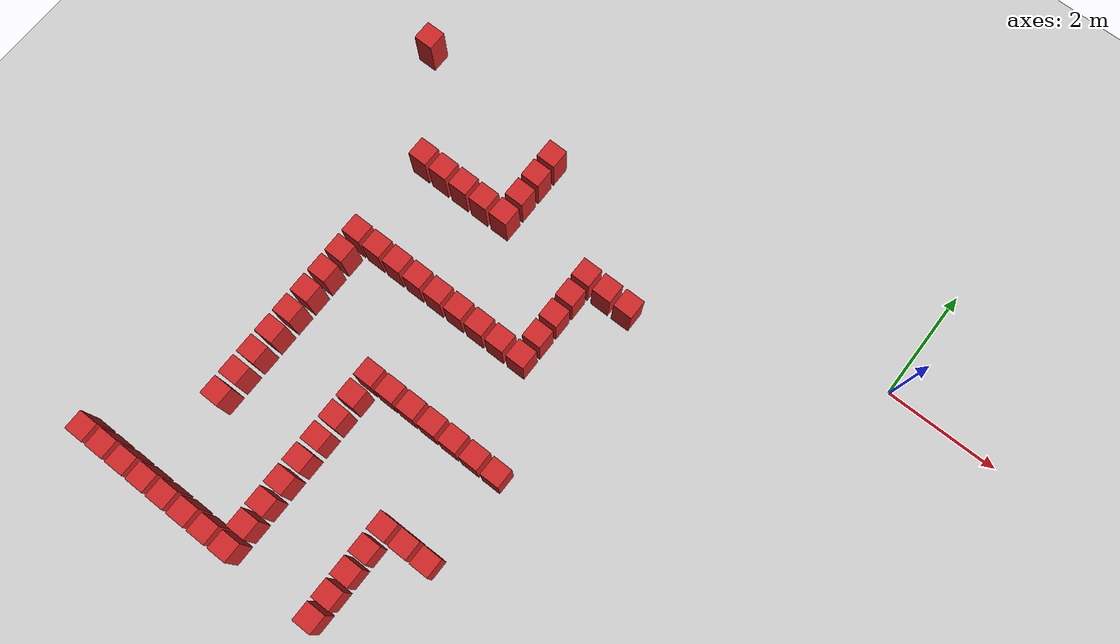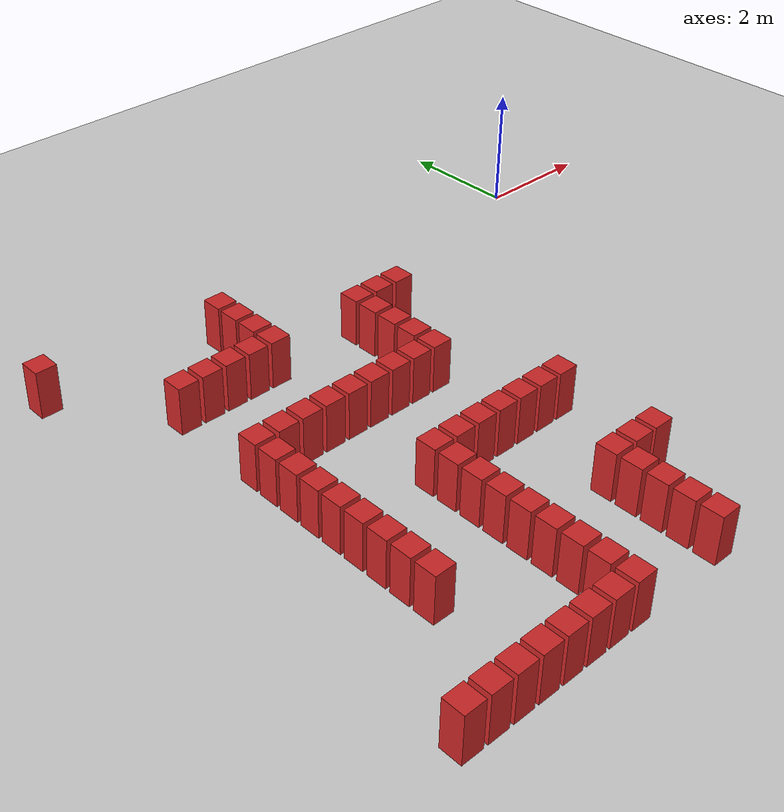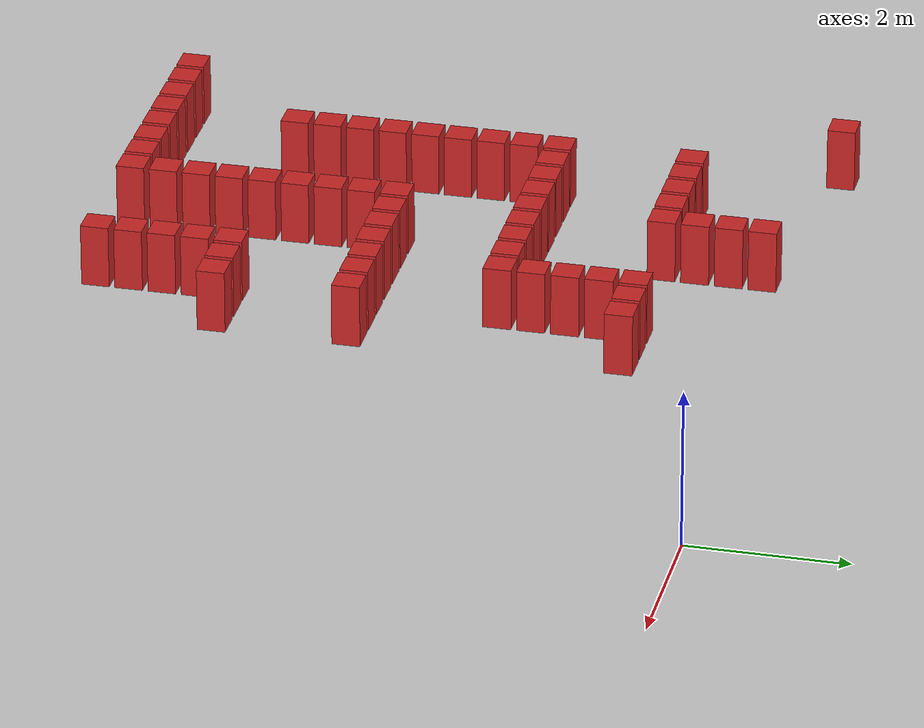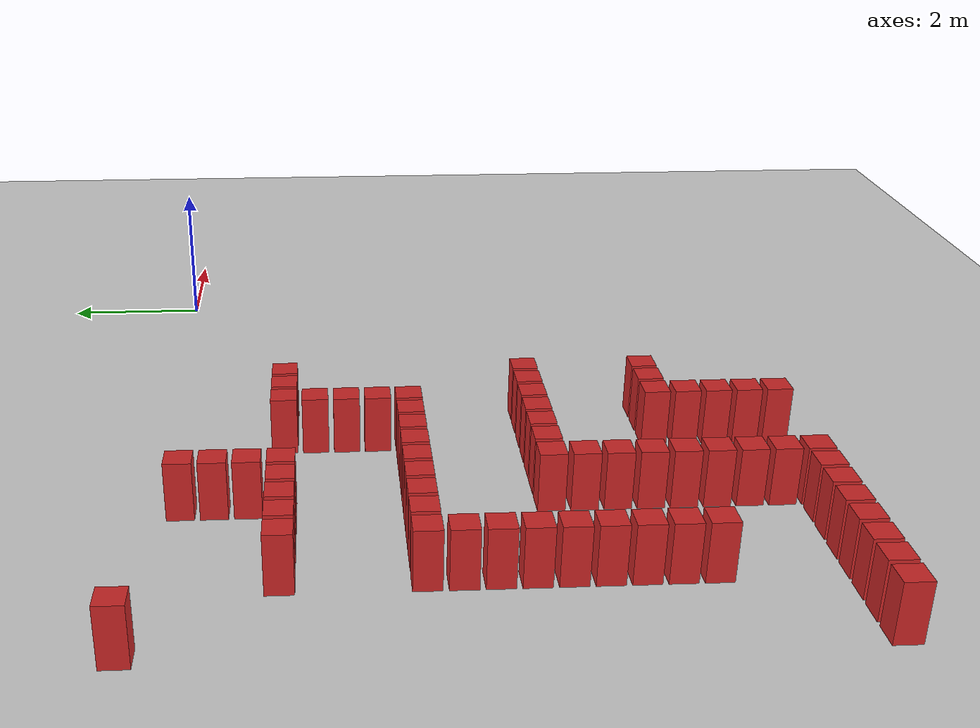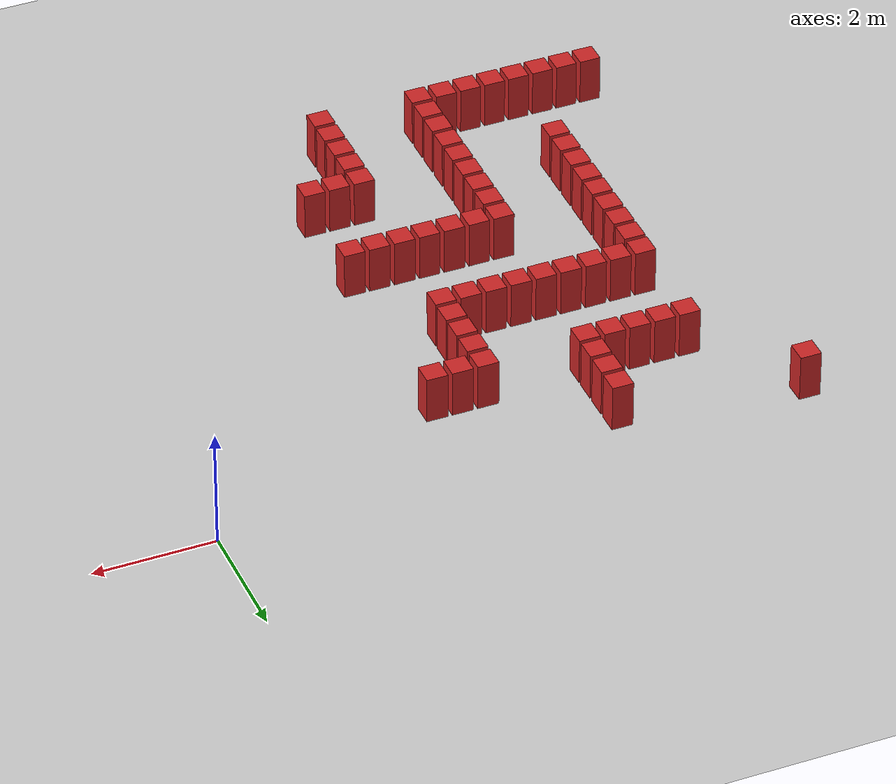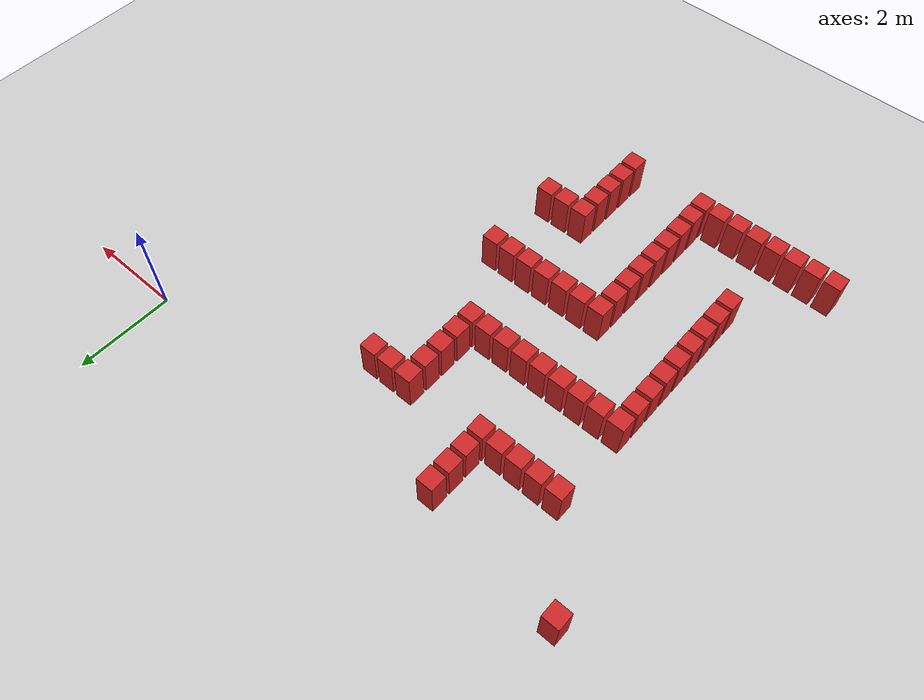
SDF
<sdf version="1.6">
 <world name="default">
  <model name="ground_plane">
   <static>1</static>
   <link name="link">
    <collision name="collision">
     <geometry><plane><normal>0 0 1</normal><size>100 100</size></plane></geometry>
     <surface><friction><ode><mu>100</mu><mu2>50</mu2></ode></friction></surface>
    </collision>
    <visual name="visual">
     <cast_shadows>0</cast_shadows>
     <geometry><plane><normal>0 0 1</normal><size>100 100</size></plane></geometry>
     <material>
      <script><uri>file://media/materials/scripts/gazebo.material</uri><name>Gazebo/Grey</name></script>
     </material>
    </visual>
   </link>
  </model>
  <model name="box_obstacle0">
   <static>0</static>
   <link name="link">
    <pose>0 0 0.1 0 -0 0</pose>
    <inertial>
     <mass>100</mass>
     <inertia>
      <ixx>0.166667</ixx>
      <ixy>0</ixy>
      <ixz>0</ixz>
      <iyy>0.166667</iyy>
      <iyz>0</iyz>
      <izz>0.166667</izz>
     </inertia>
    </inertial>
    <collision name="collision"><geometry><box><size>0.35 0.35 0.8</size></box></geometry></collision>
    <visual name="visual">
     <geometry><box><size>0.35 0.35 0.8</size></box></geometry>
     <material>
      <script><name>Gazebo/Red</name><uri>file://media/materials/scripts/gazebo.material</uri></script>
     </material>
    </visual>
   </link>
   <pose>-9.58034 -8.31994 0.300001 -1e-06 1.7e-05 0.000735</pose>
  </model>
  <model name="box_obstacle1">
   <static>0</static>
   <link name="link">
    <pose>0 0 0.1 0 -0 0</pose>
    <inertial>
     <mass>100</mass>
     <inertia>
      <ixx>0.166667</ixx>
      <ixy>0</ixy>
      <ixz>0</ixz>
      <iyy>0.166667</iyy>
      <iyz>0</iyz>
      <izz>0.166667</izz>
     </inertia>
    </inertial>
    <collision name="collision"><geometry><box><size>0.35 0.35 0.8</size></box></geometry></collision>
    <visual name="visual">
     <geometry><box><size>0.35 0.35 0.8</size></box></geometry>
     <material>
      <script><name>Gazebo/Red</name><uri>file://media/materials/scripts/gazebo.material</uri></script>
     </material>
    </visual>
   </link>
   <pose>-9.58034 0.080061 0.300001 -1e-06 1.7e-05 0.000735</pose>
  </model>
  <model name="box_obstacle2">
   <static>0</static>
   <link name="link">
    <pose>0 0 0.1 0 -0 0</pose>
    <inertial>
     <mass>100</mass>
     <inertia>
      <ixx>0.166667</ixx>
      <ixy>0</ixy>
      <ixz>0</ixz>
      <iyy>0.166667</iyy>
      <iyz>0</iyz>
      <izz>0.166667</izz>
     </inertia>
    </inertial>
    <collision name="collision"><geometry><box><size>0.35 0.35 0.8</size></box></geometry></collision>
    <visual name="visual">
     <geometry><box><size>0.35 0.35 0.8</size></box></geometry>
     <material>
      <script><name>Gazebo/Red</name><uri>file://media/materials/scripts/gazebo.material</uri></script>
     </material>
    </visual>
   </link>
   <pose>-9.16034 -8.31994 0.300001 -1e-06 1.7e-05 0.000735</pose>
  </model>
  <model name="box_obstacle4">
   <static>0</static>
   <link name="link">
    <pose>0 0 0.1 0 -0 0</pose>
    <inertial>
     <mass>100</mass>
     <inertia>
      <ixx>0.166667</ixx>
      <ixy>0</ixy>
      <ixz>0</ixz>
      <iyy>0.166667</iyy>
      <iyz>0</iyz>
      <izz>0.166667</izz>
     </inertia>
    </inertial>
    <collision name="collision"><geometry><box><size>0.35 0.35 0.8</size></box></geometry></collision>
    <visual name="visual">
     <geometry><box><size>0.35 0.35 0.8</size></box></geometry>
     <material>
      <script><name>Gazebo/Red</name><uri>file://media/materials/scripts/gazebo.material</uri></script>
     </material>
    </visual>
   </link>
   <pose>-8.74034 -8.31994 0.300001 -1e-06 1.7e-05 0.000735</pose>
  </model>
  <model name="box_obstacle6">
   <static>0</static>
   <link name="link">
    <pose>0 0 0.1 0 -0 0</pose>
    <inertial>
     <mass>100</mass>
     <inertia>
      <ixx>0.166667</ixx>
      <ixy>0</ixy>
      <ixz>0</ixz>
      <iyy>0.166667</iyy>
      <iyz>0</iyz>
      <izz>0.166667</izz>
     </inertia>
    </inertial>
    <collision name="collision"><geometry><box><size>0.35 0.35 0.8</size></box></geometry></collision>
    <visual name="visual">
     <geometry><box><size>0.35 0.35 0.8</size></box></geometry>
     <material>
      <script><name>Gazebo/Red</name><uri>file://media/materials/scripts/gazebo.material</uri></script>
     </material>
    </visual>
   </link>
   <pose>-8.32034 -8.31994 0.300001 -1e-06 1.7e-05 0.000735</pose>
  </model>
  <model name="box_obstacle7">
   <static>0</static>
   <link name="link">
    <pose>0 0 0.1 0 -0 0</pose>
    <inertial>
     <mass>100</mass>
     <inertia>
      <ixx>0.166667</ixx>
      <ixy>0</ixy>
      <ixz>0</ixz>
      <iyy>0.166667</iyy>
      <iyz>0</iyz>
      <izz>0.166667</izz>
     </inertia>
    </inertial>
    <collision name="collision"><geometry><box><size>0.35 0.35 0.8</size></box></geometry></collision>
    <visual name="visual">
     <geometry><box><size>0.35 0.35 0.8</size></box></geometry>
     <material>
      <script><name>Gazebo/Red</name><uri>file://media/materials/scripts/gazebo.material</uri></script>
     </material>
    </visual>
   </link>
   <pose>-8.32034 -6.63994 0.300001 -1e-06 1.7e-05 0.000735</pose>
  </model>
  <model name="box_obstacle8">
   <static>0</static>
   <link name="link">
    <pose>0 0 0.1 0 -0 0</pose>
    <inertial>
     <mass>100</mass>
     <inertia>
      <ixx>0.166667</ixx>
      <ixy>0</ixy>
      <ixz>0</ixz>
      <iyy>0.166667</iyy>
      <iyz>0</iyz>
      <izz>0.166667</izz>
     </inertia>
    </inertial>
    <collision name="collision"><geometry><box><size>0.35 0.35 0.8</size></box></geometry></collision>
    <visual name="visual">
     <geometry><box><size>0.35 0.35 0.8</size></box></geometry>
     <material>
      <script><name>Gazebo/Red</name><uri>file://media/materials/scripts/gazebo.material</uri></script>
     </material>
    </visual>
   </link>
   <pose>-8.32034 -6.21994 0.300001 -1e-06 1.7e-05 0.000735</pose>
  </model>
  <model name="box_obstacle9">
   <static>0</static>
   <link name="link">
    <pose>0 0 0.1 0 -0 0</pose>
    <inertial>
     <mass>100</mass>
     <inertia>
      <ixx>0.166667</ixx>
      <ixy>0</ixy>
      <ixz>0</ixz>
      <iyy>0.166667</iyy>
      <iyz>0</iyz>
      <izz>0.166667</izz>
     </inertia>
    </inertial>
    <collision name="collision"><geometry><box><size>0.35 0.35 0.8</size></box></geometry></collision>
    <visual name="visual">
     <geometry><box><size>0.35 0.35 0.8</size></box></geometry>
     <material>
      <script><name>Gazebo/Red</name><uri>file://media/materials/scripts/gazebo.material</uri></script>
     </material>
    </visual>
   </link>
   <pose>-8.32034 -5.79994 0.300001 -1e-06 1.7e-05 0.000735</pose>
  </model>
  <model name="box_obstacle10">
   <static>0</static>
   <link name="link">
    <pose>0 0 0.1 0 -0 0</pose>
    <inertial>
     <mass>100</mass>
     <inertia>
      <ixx>0.166667</ixx>
      <ixy>0</ixy>
      <ixz>0</ixz>
      <iyy>0.166667</iyy>
      <iyz>0</iyz>
      <izz>0.166667</izz>
     </inertia>
    </inertial>
    <collision name="collision"><geometry><box><size>0.35 0.35 0.8</size></box></geometry></collision>
    <visual name="visual">
     <geometry><box><size>0.35 0.35 0.8</size></box></geometry>
     <material>
      <script><name>Gazebo/Red</name><uri>file://media/materials/scripts/gazebo.material</uri></script>
     </material>
    </visual>
   </link>
   <pose>-8.32034 -5.37994 0.300001 -1e-06 1.7e-05 0.000735</pose>
  </model>
  <model name="box_obstacle11">
   <static>0</static>
   <link name="link">
    <pose>0 0 0.1 0 -0 0</pose>
    <inertial>
     <mass>100</mass>
     <inertia>
      <ixx>0.166667</ixx>
      <ixy>0</ixy>
      <ixz>0</ixz>
      <iyy>0.166667</iyy>
      <iyz>0</iyz>
      <izz>0.166667</izz>
     </inertia>
    </inertial>
    <collision name="collision"><geometry><box><size>0.35 0.35 0.8</size></box></geometry></collision>
    <visual name="visual">
     <geometry><box><size>0.35 0.35 0.8</size></box></geometry>
     <material>
      <script><name>Gazebo/Red</name><uri>file://media/materials/scripts/gazebo.material</uri></script>
     </material>
    </visual>
   </link>
   <pose>-8.32034 -4.95994 0.300001 -1e-06 1.7e-05 0.000735</pose>
  </model>
  <model name="box_obstacle12">
   <static>0</static>
   <link name="link">
    <pose>0 0 0.1 0 -0 0</pose>
    <inertial>
     <mass>100</mass>
     <inertia>
      <ixx>0.166667</ixx>
      <ixy>0</ixy>
      <ixz>0</ixz>
      <iyy>0.166667</iyy>
      <iyz>0</iyz>
      <izz>0.166667</izz>
     </inertia>
    </inertial>
    <collision name="collision"><geometry><box><size>0.35 0.35 0.8</size></box></geometry></collision>
    <visual name="visual">
     <geometry><box><size>0.35 0.35 0.8</size></box></geometry>
     <material>
      <script><name>Gazebo/Red</name><uri>file://media/materials/scripts/gazebo.material</uri></script>
     </material>
    </visual>
   </link>
   <pose>-8.32034 -4.53994 0.300001 -1e-06 1.7e-05 0.000735</pose>
  </model>
  <model name="box_obstacle13">
   <static>0</static>
   <link name="link">
    <pose>0 0 0.1 0 -0 0</pose>
    <inertial>
     <mass>100</mass>
     <inertia>
      <ixx>0.166667</ixx>
      <ixy>0</ixy>
      <ixz>0</ixz>
      <iyy>0.166667</iyy>
      <iyz>0</iyz>
      <izz>0.166667</izz>
     </inertia>
    </inertial>
    <collision name="collision"><geometry><box><size>0.35 0.35 0.8</size></box></geometry></collision>
    <visual name="visual">
     <geometry><box><size>0.35 0.35 0.8</size></box></geometry>
     <material>
      <script><name>Gazebo/Red</name><uri>file://media/materials/scripts/gazebo.material</uri></script>
     </material>
    </visual>
   </link>
   <pose>-8.32034 -4.11994 0.300001 -1e-06 1.7e-05 0.000735</pose>
  </model>
  <model name="box_obstacle14">
   <static>0</static>
   <link name="link">
    <pose>0 0 0.1 0 -0 0</pose>
    <inertial>
     <mass>100</mass>
     <inertia>
      <ixx>0.166667</ixx>
      <ixy>0</ixy>
      <ixz>0</ixz>
      <iyy>0.166667</iyy>
      <iyz>0</iyz>
      <izz>0.166667</izz>
     </inertia>
    </inertial>
    <collision name="collision"><geometry><box><size>0.35 0.35 0.8</size></box></geometry></collision>
    <visual name="visual">
     <geometry><box><size>0.35 0.35 0.8</size></box></geometry>
     <material>
      <script><name>Gazebo/Red</name><uri>file://media/materials/scripts/gazebo.material</uri></script>
     </material>
    </visual>
   </link>
   <pose>-8.32034 -3.69994 0.300001 -1e-06 1.7e-05 0.000735</pose>
  </model>
  <model name="box_obstacle15">
   <static>0</static>
   <link name="link">
    <pose>0 0 0.1 0 -0 0</pose>
    <inertial>
     <mass>100</mass>
     <inertia>
      <ixx>0.166667</ixx>
      <ixy>0</ixy>
      <ixz>0</ixz>
      <iyy>0.166667</iyy>
      <iyz>0</iyz>
      <izz>0.166667</izz>
     </inertia>
    </inertial>
    <collision name="collision"><geometry><box><size>0.35 0.35 0.8</size></box></geometry></collision>
    <visual name="visual">
     <geometry><box><size>0.35 0.35 0.8</size></box></geometry>
     <material>
      <script><name>Gazebo/Red</name><uri>file://media/materials/scripts/gazebo.material</uri></script>
     </material>
    </visual>
   </link>
   <pose>-8.32034 -3.27994 0.300001 -1e-06 1.7e-05 0.000735</pose>
  </model>
  <model name="box_obstacle16">
   <static>0</static>
   <link name="link">
    <pose>0 0 0.1 0 -0 0</pose>
    <inertial>
     <mass>100</mass>
     <inertia>
      <ixx>0.166667</ixx>
      <ixy>0</ixy>
      <ixz>0</ixz>
      <iyy>0.166667</iyy>
      <iyz>0</iyz>
      <izz>0.166667</izz>
     </inertia>
    </inertial>
    <collision name="collision"><geometry><box><size>0.35 0.35 0.8</size></box></geometry></collision>
    <visual name="visual">
     <geometry><box><size>0.35 0.35 0.8</size></box></geometry>
     <material>
      <script><name>Gazebo/Red</name><uri>file://media/materials/scripts/gazebo.material</uri></script>
     </material>
    </visual>
   </link>
   <pose>-8.32034 -1.59994 0.300001 -1e-06 1.7e-05 0.000735</pose>
  </model>
  <model name="box_obstacle35">
   <static>0</static>
   <link name="link">
    <pose>0 0 0.1 0 -0 0</pose>
    <inertial>
     <mass>100</mass>
     <inertia>
      <ixx>0.166667</ixx>
      <ixy>0</ixy>
      <ixz>0</ixz>
      <iyy>0.166667</iyy>
      <iyz>0</iyz>
      <izz>0.166667</izz>
     </inertia>
    </inertial>
    <collision name="collision"><geometry><box><size>0.35 0.35 0.8</size></box></geometry></collision>
    <visual name="visual">
     <geometry><box><size>0.35 0.35 0.8</size></box></geometry>
     <material>
      <script><name>Gazebo/Red</name><uri>file://media/materials/scripts/gazebo.material</uri></script>
     </material>
    </visual>
   </link>
   <pose>-7.90034 -8.31994 0.300001 -1e-06 1.7e-05 0.000735</pose>
  </model>
  <model name="box_obstacle36">
   <static>0</static>
   <link name="link">
    <pose>0 0 0.1 0 -0 0</pose>
    <inertial>
     <mass>100</mass>
     <inertia>
      <ixx>0.166667</ixx>
      <ixy>0</ixy>
      <ixz>0</ixz>
      <iyy>0.166667</iyy>
      <iyz>0</iyz>
      <izz>0.166667</izz>
     </inertia>
    </inertial>
    <collision name="collision"><geometry><box><size>0.35 0.35 0.8</size></box></geometry></collision>
    <visual name="visual">
     <geometry><box><size>0.35 0.35 0.8</size></box></geometry>
     <material>
      <script><name>Gazebo/Red</name><uri>file://media/materials/scripts/gazebo.material</uri></script>
     </material>
    </visual>
   </link>
   <pose>-7.90034 -3.27994 0.300001 -1e-06 1.7e-05 0.000735</pose>
  </model>
  <model name="box_obstacle37">
   <static>0</static>
   <link name="link">
    <pose>0 0 0.1 0 -0 0</pose>
    <inertial>
     <mass>100</mass>
     <inertia>
      <ixx>0.166667</ixx>
      <ixy>0</ixy>
      <ixz>0</ixz>
      <iyy>0.166667</iyy>
      <iyz>0</iyz>
      <izz>0.166667</izz>
     </inertia>
    </inertial>
    <collision name="collision"><geometry><box><size>0.35 0.35 0.8</size></box></geometry></collision>
    <visual name="visual">
     <geometry><box><size>0.35 0.35 0.8</size></box></geometry>
     <material>
      <script><name>Gazebo/Red</name><uri>file://media/materials/scripts/gazebo.material</uri></script>
     </material>
    </visual>
   </link>
   <pose>-7.90034 -1.59994 0.300001 -1e-06 1.7e-05 0.000735</pose>
  </model>
  <model name="box_obstacle40">
   <static>0</static>
   <link name="link">
    <pose>0 0 0.1 0 -0 0</pose>
    <inertial>
     <mass>100</mass>
     <inertia>
      <ixx>0.166667</ixx>
      <ixy>0</ixy>
      <ixz>0</ixz>
      <iyy>0.166667</iyy>
      <iyz>0</iyz>
      <izz>0.166667</izz>
     </inertia>
    </inertial>
    <collision name="collision"><geometry><box><size>0.35 0.35 0.8</size></box></geometry></collision>
    <visual name="visual">
     <geometry><box><size>0.35 0.35 0.8</size></box></geometry>
     <material>
      <script><name>Gazebo/Red</name><uri>file://media/materials/scripts/gazebo.material</uri></script>
     </material>
    </visual>
   </link>
   <pose>-7.48034 -8.31994 0.300001 -1e-06 1.7e-05 0.000735</pose>
  </model>
  <model name="box_obstacle41">
   <static>0</static>
   <link name="link">
    <pose>0 0 0.1 0 -0 0</pose>
    <inertial>
     <mass>100</mass>
     <inertia>
      <ixx>0.166667</ixx>
      <ixy>0</ixy>
      <ixz>0</ixz>
      <iyy>0.166667</iyy>
      <iyz>0</iyz>
      <izz>0.166667</izz>
     </inertia>
    </inertial>
    <collision name="collision"><geometry><box><size>0.35 0.35 0.8</size></box></geometry></collision>
    <visual name="visual">
     <geometry><box><size>0.35 0.35 0.8</size></box></geometry>
     <material>
      <script><name>Gazebo/Red</name><uri>file://media/materials/scripts/gazebo.material</uri></script>
     </material>
    </visual>
   </link>
   <pose>-7.48034 -3.27994 0.300001 -1e-06 1.7e-05 0.000735</pose>
  </model>
  <model name="box_obstacle42">
   <static>0</static>
   <link name="link">
    <pose>0 0 0.1 0 -0 0</pose>
    <inertial>
     <mass>100</mass>
     <inertia>
      <ixx>0.166667</ixx>
      <ixy>0</ixy>
      <ixz>0</ixz>
      <iyy>0.166667</iyy>
      <iyz>0</iyz>
      <izz>0.166667</izz>
     </inertia>
    </inertial>
    <collision name="collision"><geometry><box><size>0.35 0.35 0.8</size></box></geometry></collision>
    <visual name="visual">
     <geometry><box><size>0.35 0.35 0.8</size></box></geometry>
     <material>
      <script><name>Gazebo/Red</name><uri>file://media/materials/scripts/gazebo.material</uri></script>
     </material>
    </visual>
   </link>
   <pose>-7.48034 -1.59994 0.300001 -1e-06 1.7e-05 0.000735</pose>
  </model>
  <model name="box_obstacle45">
   <static>0</static>
   <link name="link">
    <pose>0 0 0.1 0 -0 0</pose>
    <inertial>
     <mass>100</mass>
     <inertia>
      <ixx>0.166667</ixx>
      <ixy>0</ixy>
      <ixz>0</ixz>
      <iyy>0.166667</iyy>
      <iyz>0</iyz>
      <izz>0.166667</izz>
     </inertia>
    </inertial>
    <collision name="collision"><geometry><box><size>0.35 0.35 0.8</size></box></geometry></collision>
    <visual name="visual">
     <geometry><box><size>0.35 0.35 0.8</size></box></geometry>
     <material>
      <script><name>Gazebo/Red</name><uri>file://media/materials/scripts/gazebo.material</uri></script>
     </material>
    </visual>
   </link>
   <pose>-7.06034 -8.31994 0.300001 -1e-06 1.7e-05 0.000735</pose>
  </model>
  <model name="box_obstacle46">
   <static>0</static>
   <link name="link">
    <pose>0 0 0.1 0 -0 0</pose>
    <inertial>
     <mass>100</mass>
     <inertia>
      <ixx>0.166667</ixx>
      <ixy>0</ixy>
      <ixz>0</ixz>
      <iyy>0.166667</iyy>
      <iyz>0</iyz>
      <izz>0.166667</izz>
     </inertia>
    </inertial>
    <collision name="collision"><geometry><box><size>0.35 0.35 0.8</size></box></geometry></collision>
    <visual name="visual">
     <geometry><box><size>0.35 0.35 0.8</size></box></geometry>
     <material>
      <script><name>Gazebo/Red</name><uri>file://media/materials/scripts/gazebo.material</uri></script>
     </material>
    </visual>
   </link>
   <pose>-7.06034 -3.27994 0.300001 -1e-06 1.7e-05 0.000735</pose>
  </model>
  <model name="box_obstacle47">
   <static>0</static>
   <link name="link">
    <pose>0 0 0.1 0 -0 0</pose>
    <inertial>
     <mass>100</mass>
     <inertia>
      <ixx>0.166667</ixx>
      <ixy>0</ixy>
      <ixz>0</ixz>
      <iyy>0.166667</iyy>
      <iyz>0</iyz>
      <izz>0.166667</izz>
     </inertia>
    </inertial>
    <collision name="collision"><geometry><box><size>0.35 0.35 0.8</size></box></geometry></collision>
    <visual name="visual">
     <geometry><box><size>0.35 0.35 0.8</size></box></geometry>
     <material>
      <script><name>Gazebo/Red</name><uri>file://media/materials/scripts/gazebo.material</uri></script>
     </material>
    </visual>
   </link>
   <pose>-7.06034 -1.59994 0.300001 -1e-06 1.7e-05 0.000735</pose>
  </model>
  <model name="box_obstacle50">
   <static>0</static>
   <link name="link">
    <pose>0 0 0.1 0 -0 0</pose>
    <inertial>
     <mass>100</mass>
     <inertia>
      <ixx>0.166667</ixx>
      <ixy>0</ixy>
      <ixz>0</ixz>
      <iyy>0.166667</iyy>
      <iyz>0</iyz>
      <izz>0.166667</izz>
     </inertia>
    </inertial>
    <collision name="collision"><geometry><box><size>0.35 0.35 0.8</size></box></geometry></collision>
    <visual name="visual">
     <geometry><box><size>0.35 0.35 0.8</size></box></geometry>
     <material>
      <script><name>Gazebo/Red</name><uri>file://media/materials/scripts/gazebo.material</uri></script>
     </material>
    </visual>
   </link>
   <pose>-6.64034 -8.31994 0.300001 -1e-06 1.7e-05 0.000735</pose>
  </model>
  <model name="box_obstacle51">
   <static>0</static>
   <link name="link">
    <pose>0 0 0.1 0 -0 0</pose>
    <inertial>
     <mass>100</mass>
     <inertia>
      <ixx>0.166667</ixx>
      <ixy>0</ixy>
      <ixz>0</ixz>
      <iyy>0.166667</iyy>
      <iyz>0</iyz>
      <izz>0.166667</izz>
     </inertia>
    </inertial>
    <collision name="collision"><geometry><box><size>0.35 0.35 0.8</size></box></geometry></collision>
    <visual name="visual">
     <geometry><box><size>0.35 0.35 0.8</size></box></geometry>
     <material>
      <script><name>Gazebo/Red</name><uri>file://media/materials/scripts/gazebo.material</uri></script>
     </material>
    </visual>
   </link>
   <pose>-6.64034 -7.89994 0.300001 -1e-06 1.7e-05 0.000735</pose>
  </model>
  <model name="box_obstacle52">
   <static>0</static>
   <link name="link">
    <pose>0 0 0.1 0 -0 0</pose>
    <inertial>
     <mass>100</mass>
     <inertia>
      <ixx>0.166667</ixx>
      <ixy>0</ixy>
      <ixz>0</ixz>
      <iyy>0.166667</iyy>
      <iyz>0</iyz>
      <izz>0.166667</izz>
     </inertia>
    </inertial>
    <collision name="collision"><geometry><box><size>0.35 0.35 0.8</size></box></geometry></collision>
    <visual name="visual">
     <geometry><box><size>0.35 0.35 0.8</size></box></geometry>
     <material>
      <script><name>Gazebo/Red</name><uri>file://media/materials/scripts/gazebo.material</uri></script>
     </material>
    </visual>
   </link>
   <pose>-6.64034 -7.47994 0.300001 -1e-06 1.7e-05 0.000735</pose>
  </model>
  <model name="box_obstacle53">
   <static>0</static>
   <link name="link">
    <pose>0 0 0.1 0 -0 0</pose>
    <inertial>
     <mass>100</mass>
     <inertia>
      <ixx>0.166667</ixx>
      <ixy>0</ixy>
      <ixz>0</ixz>
      <iyy>0.166667</iyy>
      <iyz>0</iyz>
      <izz>0.166667</izz>
     </inertia>
    </inertial>
    <collision name="collision"><geometry><box><size>0.35 0.35 0.8</size></box></geometry></collision>
    <visual name="visual">
     <geometry><box><size>0.35 0.35 0.8</size></box></geometry>
     <material>
      <script><name>Gazebo/Red</name><uri>file://media/materials/scripts/gazebo.material</uri></script>
     </material>
    </visual>
   </link>
   <pose>-6.64034 -7.05994 0.300001 -1e-06 1.7e-05 0.000735</pose>
  </model>
  <model name="box_obstacle54">
   <static>0</static>
   <link name="link">
    <pose>0 0 0.1 0 -0 0</pose>
    <inertial>
     <mass>100</mass>
     <inertia>
      <ixx>0.166667</ixx>
      <ixy>0</ixy>
      <ixz>0</ixz>
      <iyy>0.166667</iyy>
      <iyz>0</iyz>
      <izz>0.166667</izz>
     </inertia>
    </inertial>
    <collision name="collision"><geometry><box><size>0.35 0.35 0.8</size></box></geometry></collision>
    <visual name="visual">
     <geometry><box><size>0.35 0.35 0.8</size></box></geometry>
     <material>
      <script><name>Gazebo/Red</name><uri>file://media/materials/scripts/gazebo.material</uri></script>
     </material>
    </visual>
   </link>
   <pose>-6.64034 -6.63994 0.300001 -1e-06 1.7e-05 0.000735</pose>
  </model>
  <model name="box_obstacle55">
   <static>0</static>
   <link name="link">
    <pose>0 0 0.1 0 -0 0</pose>
    <inertial>
     <mass>100</mass>
     <inertia>
      <ixx>0.166667</ixx>
      <ixy>0</ixy>
      <ixz>0</ixz>
      <iyy>0.166667</iyy>
      <iyz>0</iyz>
      <izz>0.166667</izz>
     </inertia>
    </inertial>
    <collision name="collision"><geometry><box><size>0.35 0.35 0.8</size></box></geometry></collision>
    <visual name="visual">
     <geometry><box><size>0.35 0.35 0.8</size></box></geometry>
     <material>
      <script><name>Gazebo/Red</name><uri>file://media/materials/scripts/gazebo.material</uri></script>
     </material>
    </visual>
   </link>
   <pose>-6.64034 -6.21994 0.300001 -1e-06 1.7e-05 0.000735</pose>
  </model>
  <model name="box_obstacle56">
   <static>0</static>
   <link name="link">
    <pose>0 0 0.1 0 -0 0</pose>
    <inertial>
     <mass>100</mass>
     <inertia>
      <ixx>0.166667</ixx>
      <ixy>0</ixy>
      <ixz>0</ixz>
      <iyy>0.166667</iyy>
      <iyz>0</iyz>
      <izz>0.166667</izz>
     </inertia>
    </inertial>
    <collision name="collision"><geometry><box><size>0.35 0.35 0.8</size></box></geometry></collision>
    <visual name="visual">
     <geometry><box><size>0.35 0.35 0.8</size></box></geometry>
     <material>
      <script><name>Gazebo/Red</name><uri>file://media/materials/scripts/gazebo.material</uri></script>
     </material>
    </visual>
   </link>
   <pose>-6.64034 -5.79994 0.300001 -1e-06 1.7e-05 0.000735</pose>
  </model>
  <model name="box_obstacle57">
   <static>0</static>
   <link name="link">
    <pose>0 0 0.1 0 -0 0</pose>
    <inertial>
     <mass>100</mass>
     <inertia>
      <ixx>0.166667</ixx>
      <ixy>0</ixy>
      <ixz>0</ixz>
      <iyy>0.166667</iyy>
      <iyz>0</iyz>
      <izz>0.166667</izz>
     </inertia>
    </inertial>
    <collision name="collision"><geometry><box><size>0.35 0.35 0.8</size></box></geometry></collision>
    <visual name="visual">
     <geometry><box><size>0.35 0.35 0.8</size></box></geometry>
     <material>
      <script><name>Gazebo/Red</name><uri>file://media/materials/scripts/gazebo.material</uri></script>
     </material>
    </visual>
   </link>
   <pose>-6.64034 -5.37994 0.300001 -1e-06 1.7e-05 0.000735</pose>
  </model>
  <model name="box_obstacle58">
   <static>0</static>
   <link name="link">
    <pose>0 0 0.1 0 -0 0</pose>
    <inertial>
     <mass>100</mass>
     <inertia>
      <ixx>0.166667</ixx>
      <ixy>0</ixy>
      <ixz>0</ixz>
      <iyy>0.166667</iyy>
      <iyz>0</iyz>
      <izz>0.166667</izz>
     </inertia>
    </inertial>
    <collision name="collision"><geometry><box><size>0.35 0.35 0.8</size></box></geometry></collision>
    <visual name="visual">
     <geometry><box><size>0.35 0.35 0.8</size></box></geometry>
     <material>
      <script><name>Gazebo/Red</name><uri>file://media/materials/scripts/gazebo.material</uri></script>
     </material>
    </visual>
   </link>
   <pose>-6.64034 -4.95994 0.300001 -1e-06 1.7e-05 0.000735</pose>
  </model>
  <model name="box_obstacle59">
   <static>0</static>
   <link name="link">
    <pose>0 0 0.1 0 -0 0</pose>
    <inertial>
     <mass>100</mass>
     <inertia>
      <ixx>0.166667</ixx>
      <ixy>0</ixy>
      <ixz>0</ixz>
      <iyy>0.166667</iyy>
      <iyz>0</iyz>
      <izz>0.166667</izz>
     </inertia>
    </inertial>
    <collision name="collision"><geometry><box><size>0.35 0.35 0.8</size></box></geometry></collision>
    <visual name="visual">
     <geometry><box><size>0.35 0.35 0.8</size></box></geometry>
     <material>
      <script><name>Gazebo/Red</name><uri>file://media/materials/scripts/gazebo.material</uri></script>
     </material>
    </visual>
   </link>
   <pose>-6.64034 -3.27994 0.300001 -1e-06 1.7e-05 0.000735</pose>
  </model>
  <model name="box_obstacle60">
   <static>0</static>
   <link name="link">
    <pose>0 0 0.1 0 -0 0</pose>
    <inertial>
     <mass>100</mass>
     <inertia>
      <ixx>0.166667</ixx>
      <ixy>0</ixy>
      <ixz>0</ixz>
      <iyy>0.166667</iyy>
      <iyz>0</iyz>
      <izz>0.166667</izz>
     </inertia>
    </inertial>
    <collision name="collision"><geometry><box><size>0.35 0.35 0.8</size></box></geometry></collision>
    <visual name="visual">
     <geometry><box><size>0.35 0.35 0.8</size></box></geometry>
     <material>
      <script><name>Gazebo/Red</name><uri>file://media/materials/scripts/gazebo.material</uri></script>
     </material>
    </visual>
   </link>
   <pose>-6.64034 -1.59994 0.300001 -1e-06 1.7e-05 0.000735</pose>
  </model>
  <model name="box_obstacle61">
   <static>0</static>
   <link name="link">
    <pose>0 0 0.1 0 -0 0</pose>
    <inertial>
     <mass>100</mass>
     <inertia>
      <ixx>0.166667</ixx>
      <ixy>0</ixy>
      <ixz>0</ixz>
      <iyy>0.166667</iyy>
      <iyz>0</iyz>
      <izz>0.166667</izz>
     </inertia>
    </inertial>
    <collision name="collision"><geometry><box><size>0.35 0.35 0.8</size></box></geometry></collision>
    <visual name="visual">
     <geometry><box><size>0.35 0.35 0.8</size></box></geometry>
     <material>
      <script><name>Gazebo/Red</name><uri>file://media/materials/scripts/gazebo.material</uri></script>
     </material>
    </visual>
   </link>
   <pose>-6.64034 -1.17994 0.300001 -1e-06 1.7e-05 0.000735</pose>
  </model>
  <model name="box_obstacle62">
   <static>0</static>
   <link name="link">
    <pose>0 0 0.1 0 -0 0</pose>
    <inertial>
     <mass>100</mass>
     <inertia>
      <ixx>0.166667</ixx>
      <ixy>0</ixy>
      <ixz>0</ixz>
      <iyy>0.166667</iyy>
      <iyz>0</iyz>
      <izz>0.166667</izz>
     </inertia>
    </inertial>
    <collision name="collision"><geometry><box><size>0.35 0.35 0.8</size></box></geometry></collision>
    <visual name="visual">
     <geometry><box><size>0.35 0.35 0.8</size></box></geometry>
     <material>
      <script><name>Gazebo/Red</name><uri>file://media/materials/scripts/gazebo.material</uri></script>
     </material>
    </visual>
   </link>
   <pose>-6.64034 -0.759939 0.300001 -1e-06 1.7e-05 0.000735</pose>
  </model>
  <model name="box_obstacle63">
   <static>0</static>
   <link name="link">
    <pose>0 0 0.1 0 -0 0</pose>
    <inertial>
     <mass>100</mass>
     <inertia>
      <ixx>0.166667</ixx>
      <ixy>0</ixy>
      <ixz>0</ixz>
      <iyy>0.166667</iyy>
      <iyz>0</iyz>
      <izz>0.166667</izz>
     </inertia>
    </inertial>
    <collision name="collision"><geometry><box><size>0.35 0.35 0.8</size></box></geometry></collision>
    <visual name="visual">
     <geometry><box><size>0.35 0.35 0.8</size></box></geometry>
     <material>
      <script><name>Gazebo/Red</name><uri>file://media/materials/scripts/gazebo.material</uri></script>
     </material>
    </visual>
   </link>
   <pose>-6.64034 -0.339939 0.300001 -1e-06 1.7e-05 0.000735</pose>
  </model>
  <model name="box_obstacle82">
   <static>0</static>
   <link name="link">
    <pose>0 0 0.1 0 -0 0</pose>
    <inertial>
     <mass>100</mass>
     <inertia>
      <ixx>0.166667</ixx>
      <ixy>0</ixy>
      <ixz>0</ixz>
      <iyy>0.166667</iyy>
      <iyz>0</iyz>
      <izz>0.166667</izz>
     </inertia>
    </inertial>
    <collision name="collision"><geometry><box><size>0.35 0.35 0.8</size></box></geometry></collision>
    <visual name="visual">
     <geometry><box><size>0.35 0.35 0.8</size></box></geometry>
     <material>
      <script><name>Gazebo/Red</name><uri>file://media/materials/scripts/gazebo.material</uri></script>
     </material>
    </visual>
   </link>
   <pose>-6.22034 -4.95994 0.300001 -1e-06 1.7e-05 0.000735</pose>
  </model>
  <model name="box_obstacle83">
   <static>0</static>
   <link name="link">
    <pose>0 0 0.1 0 -0 0</pose>
    <inertial>
     <mass>100</mass>
     <inertia>
      <ixx>0.166667</ixx>
      <ixy>0</ixy>
      <ixz>0</ixz>
      <iyy>0.166667</iyy>
      <iyz>0</iyz>
      <izz>0.166667</izz>
     </inertia>
    </inertial>
    <collision name="collision"><geometry><box><size>0.35 0.35 0.8</size></box></geometry></collision>
    <visual name="visual">
     <geometry><box><size>0.35 0.35 0.8</size></box></geometry>
     <material>
      <script><name>Gazebo/Red</name><uri>file://media/materials/scripts/gazebo.material</uri></script>
     </material>
    </visual>
   </link>
   <pose>-6.22034 -3.27994 0.300001 -1e-06 1.7e-05 0.000735</pose>
  </model>
  <model name="box_obstacle85">
   <static>0</static>
   <link name="link">
    <pose>0 0 0.1 0 -0 0</pose>
    <inertial>
     <mass>100</mass>
     <inertia>
      <ixx>0.166667</ixx>
      <ixy>0</ixy>
      <ixz>0</ixz>
      <iyy>0.166667</iyy>
      <iyz>0</iyz>
      <izz>0.166667</izz>
     </inertia>
    </inertial>
    <collision name="collision"><geometry><box><size>0.35 0.35 0.8</size></box></geometry></collision>
    <visual name="visual">
     <geometry><box><size>0.35 0.35 0.8</size></box></geometry>
     <material>
      <script><name>Gazebo/Red</name><uri>file://media/materials/scripts/gazebo.material</uri></script>
     </material>
    </visual>
   </link>
   <pose>-5.80034 -4.95994 0.300001 -1e-06 1.7e-05 0.000735</pose>
  </model>
  <model name="box_obstacle86">
   <static>0</static>
   <link name="link">
    <pose>0 0 0.1 0 -0 0</pose>
    <inertial>
     <mass>100</mass>
     <inertia>
      <ixx>0.166667</ixx>
      <ixy>0</ixy>
      <ixz>0</ixz>
      <iyy>0.166667</iyy>
      <iyz>0</iyz>
      <izz>0.166667</izz>
     </inertia>
    </inertial>
    <collision name="collision"><geometry><box><size>0.35 0.35 0.8</size></box></geometry></collision>
    <visual name="visual">
     <geometry><box><size>0.35 0.35 0.8</size></box></geometry>
     <material>
      <script><name>Gazebo/Red</name><uri>file://media/materials/scripts/gazebo.material</uri></script>
     </material>
    </visual>
   </link>
   <pose>-5.80034 -3.27994 0.300001 -1e-06 1.7e-05 0.000735</pose>
  </model>
  <model name="box_obstacle88">
   <static>0</static>
   <link name="link">
    <pose>0 0 0.1 0 -0 0</pose>
    <inertial>
     <mass>100</mass>
     <inertia>
      <ixx>0.166667</ixx>
      <ixy>0</ixy>
      <ixz>0</ixz>
      <iyy>0.166667</iyy>
      <iyz>0</iyz>
      <izz>0.166667</izz>
     </inertia>
    </inertial>
    <collision name="collision"><geometry><box><size>0.35 0.35 0.8</size></box></geometry></collision>
    <visual name="visual">
     <geometry><box><size>0.35 0.35 0.8</size></box></geometry>
     <material>
      <script><name>Gazebo/Red</name><uri>file://media/materials/scripts/gazebo.material</uri></script>
     </material>
    </visual>
   </link>
   <pose>-5.38034 -4.95994 0.300001 -1e-06 1.7e-05 0.000735</pose>
  </model>
  <model name="box_obstacle89">
   <static>0</static>
   <link name="link">
    <pose>0 0 0.1 0 -0 0</pose>
    <inertial>
     <mass>100</mass>
     <inertia>
      <ixx>0.166667</ixx>
      <ixy>0</ixy>
      <ixz>0</ixz>
      <iyy>0.166667</iyy>
      <iyz>0</iyz>
      <izz>0.166667</izz>
     </inertia>
    </inertial>
    <collision name="collision"><geometry><box><size>0.35 0.35 0.8</size></box></geometry></collision>
    <visual name="visual">
     <geometry><box><size>0.35 0.35 0.8</size></box></geometry>
     <material>
      <script><name>Gazebo/Red</name><uri>file://media/materials/scripts/gazebo.material</uri></script>
     </material>
    </visual>
   </link>
   <pose>-5.38034 -3.27994 0.300001 -1e-06 1.7e-05 0.000735</pose>
  </model>
  <model name="box_obstacle91">
   <static>0</static>
   <link name="link">
    <pose>0 0 0.1 0 -0 0</pose>
    <inertial>
     <mass>100</mass>
     <inertia>
      <ixx>0.166667</ixx>
      <ixy>0</ixy>
      <ixz>0</ixz>
      <iyy>0.166667</iyy>
      <iyz>0</iyz>
      <izz>0.166667</izz>
     </inertia>
    </inertial>
    <collision name="collision"><geometry><box><size>0.35 0.35 0.8</size></box></geometry></collision>
    <visual name="visual">
     <geometry><box><size>0.35 0.35 0.8</size></box></geometry>
     <material>
      <script><name>Gazebo/Red</name><uri>file://media/materials/scripts/gazebo.material</uri></script>
     </material>
    </visual>
   </link>
   <pose>-4.96034 -8.31994 0.300001 -1e-06 1.7e-05 0.000735</pose>
  </model>
  <model name="box_obstacle92">
   <static>0</static>
   <link name="link">
    <pose>0 0 0.1 0 -0 0</pose>
    <inertial>
     <mass>100</mass>
     <inertia>
      <ixx>0.166667</ixx>
      <ixy>0</ixy>
      <ixz>0</ixz>
      <iyy>0.166667</iyy>
      <iyz>0</iyz>
      <izz>0.166667</izz>
     </inertia>
    </inertial>
    <collision name="collision"><geometry><box><size>0.35 0.35 0.8</size></box></geometry></collision>
    <visual name="visual">
     <geometry><box><size>0.35 0.35 0.8</size></box></geometry>
     <material>
      <script><name>Gazebo/Red</name><uri>file://media/materials/scripts/gazebo.material</uri></script>
     </material>
    </visual>
   </link>
   <pose>-4.96034 -7.89994 0.300001 -1e-06 1.7e-05 0.000735</pose>
  </model>
  <model name="box_obstacle93">
   <static>0</static>
   <link name="link">
    <pose>0 0 0.1 0 -0 0</pose>
    <inertial>
     <mass>100</mass>
     <inertia>
      <ixx>0.166667</ixx>
      <ixy>0</ixy>
      <ixz>0</ixz>
      <iyy>0.166667</iyy>
      <iyz>0</iyz>
      <izz>0.166667</izz>
     </inertia>
    </inertial>
    <collision name="collision"><geometry><box><size>0.35 0.35 0.8</size></box></geometry></collision>
    <visual name="visual">
     <geometry><box><size>0.35 0.35 0.8</size></box></geometry>
     <material>
      <script><name>Gazebo/Red</name><uri>file://media/materials/scripts/gazebo.material</uri></script>
     </material>
    </visual>
   </link>
   <pose>-4.96034 -7.47994 0.300001 -1e-06 1.7e-05 0.000735</pose>
  </model>
  <model name="box_obstacle94">
   <static>0</static>
   <link name="link">
    <pose>0 0 0.1 0 -0 0</pose>
    <inertial>
     <mass>100</mass>
     <inertia>
      <ixx>0.166667</ixx>
      <ixy>0</ixy>
      <ixz>0</ixz>
      <iyy>0.166667</iyy>
      <iyz>0</iyz>
      <izz>0.166667</izz>
     </inertia>
    </inertial>
    <collision name="collision"><geometry><box><size>0.35 0.35 0.8</size></box></geometry></collision>
    <visual name="visual">
     <geometry><box><size>0.35 0.35 0.8</size></box></geometry>
     <material>
      <script><name>Gazebo/Red</name><uri>file://media/materials/scripts/gazebo.material</uri></script>
     </material>
    </visual>
   </link>
   <pose>-4.96034 -7.05994 0.300001 -1e-06 1.7e-05 0.000735</pose>
  </model>
  <model name="box_obstacle95">
   <static>0</static>
   <link name="link">
    <pose>0 0 0.1 0 -0 0</pose>
    <inertial>
     <mass>100</mass>
     <inertia>
      <ixx>0.166667</ixx>
      <ixy>0</ixy>
      <ixz>0</ixz>
      <iyy>0.166667</iyy>
      <iyz>0</iyz>
      <izz>0.166667</izz>
     </inertia>
    </inertial>
    <collision name="collision"><geometry><box><size>0.35 0.35 0.8</size></box></geometry></collision>
    <visual name="visual">
     <geometry><box><size>0.35 0.35 0.8</size></box></geometry>
     <material>
      <script><name>Gazebo/Red</name><uri>file://media/materials/scripts/gazebo.material</uri></script>
     </material>
    </visual>
   </link>
   <pose>-4.96034 -6.63994 0.300001 -1e-06 1.7e-05 0.000735</pose>
  </model>
  <model name="box_obstacle96">
   <static>0</static>
   <link name="link">
    <pose>0 0 0.1 0 -0 0</pose>
    <inertial>
     <mass>100</mass>
     <inertia>
      <ixx>0.166667</ixx>
      <ixy>0</ixy>
      <ixz>0</ixz>
      <iyy>0.166667</iyy>
      <iyz>0</iyz>
      <izz>0.166667</izz>
     </inertia>
    </inertial>
    <collision name="collision"><geometry><box><size>0.35 0.35 0.8</size></box></geometry></collision>
    <visual name="visual">
     <geometry><box><size>0.35 0.35 0.8</size></box></geometry>
     <material>
      <script><name>Gazebo/Red</name><uri>file://media/materials/scripts/gazebo.material</uri></script>
     </material>
    </visual>
   </link>
   <pose>-4.96034 -4.95994 0.300001 -1e-06 1.7e-05 0.000735</pose>
  </model>
  <model name="box_obstacle97">
   <static>0</static>
   <link name="link">
    <pose>0 0 0.1 0 -0 0</pose>
    <inertial>
     <mass>100</mass>
     <inertia>
      <ixx>0.166667</ixx>
      <ixy>0</ixy>
      <ixz>0</ixz>
      <iyy>0.166667</iyy>
      <iyz>0</iyz>
      <izz>0.166667</izz>
     </inertia>
    </inertial>
    <collision name="collision"><geometry><box><size>0.35 0.35 0.8</size></box></geometry></collision>
    <visual name="visual">
     <geometry><box><size>0.35 0.35 0.8</size></box></geometry>
     <material>
      <script><name>Gazebo/Red</name><uri>file://media/materials/scripts/gazebo.material</uri></script>
     </material>
    </visual>
   </link>
   <pose>-4.96034 -3.27994 0.300001 -1e-06 1.7e-05 0.000735</pose>
  </model>
  <model name="box_obstacle98">
   <static>0</static>
   <link name="link">
    <pose>0 0 0.1 0 -0 0</pose>
    <inertial>
     <mass>100</mass>
     <inertia>
      <ixx>0.166667</ixx>
      <ixy>0</ixy>
      <ixz>0</ixz>
      <iyy>0.166667</iyy>
      <iyz>0</iyz>
      <izz>0.166667</izz>
     </inertia>
    </inertial>
    <collision name="collision"><geometry><box><size>0.35 0.35 0.8</size></box></geometry></collision>
    <visual name="visual">
     <geometry><box><size>0.35 0.35 0.8</size></box></geometry>
     <material>
      <script><name>Gazebo/Red</name><uri>file://media/materials/scripts/gazebo.material</uri></script>
     </material>
    </visual>
   </link>
   <pose>-4.96034 -2.85994 0.300001 -1e-06 1.7e-05 0.000735</pose>
  </model>
  <model name="box_obstacle99">
   <static>0</static>
   <link name="link">
    <pose>0 0 0.1 0 -0 0</pose>
    <inertial>
     <mass>100</mass>
     <inertia>
      <ixx>0.166667</ixx>
      <ixy>0</ixy>
      <ixz>0</ixz>
      <iyy>0.166667</iyy>
      <iyz>0</iyz>
      <izz>0.166667</izz>
     </inertia>
    </inertial>
    <collision name="collision"><geometry><box><size>0.35 0.35 0.8</size></box></geometry></collision>
    <visual name="visual">
     <geometry><box><size>0.35 0.35 0.8</size></box></geometry>
     <material>
      <script><name>Gazebo/Red</name><uri>file://media/materials/scripts/gazebo.material</uri></script>
     </material>
    </visual>
   </link>
   <pose>-4.96034 -2.43994 0.300001 -1e-06 1.7e-05 0.000735</pose>
  </model>
  <model name="box_obstacle100">
   <static>0</static>
   <link name="link">
    <pose>0 0 0.1 0 -0 0</pose>
    <inertial>
     <mass>100</mass>
     <inertia>
      <ixx>0.166667</ixx>
      <ixy>0</ixy>
      <ixz>0</ixz>
      <iyy>0.166667</iyy>
      <iyz>0</iyz>
      <izz>0.166667</izz>
     </inertia>
    </inertial>
    <collision name="collision"><geometry><box><size>0.35 0.35 0.8</size></box></geometry></collision>
    <visual name="visual">
     <geometry><box><size>0.35 0.35 0.8</size></box></geometry>
     <material>
      <script><name>Gazebo/Red</name><uri>file://media/materials/scripts/gazebo.material</uri></script>
     </material>
    </visual>
   </link>
   <pose>-4.96034 -2.01994 0.300001 -1e-06 1.7e-05 0.000735</pose>
  </model>
  <model name="box_obstacle101">
   <static>0</static>
   <link name="link">
    <pose>0 0 0.1 0 -0 0</pose>
    <inertial>
     <mass>100</mass>
     <inertia>
      <ixx>0.166667</ixx>
      <ixy>0</ixy>
      <ixz>0</ixz>
      <iyy>0.166667</iyy>
      <iyz>0</iyz>
      <izz>0.166667</izz>
     </inertia>
    </inertial>
    <collision name="collision"><geometry><box><size>0.35 0.35 0.8</size></box></geometry></collision>
    <visual name="visual">
     <geometry><box><size>0.35 0.35 0.8</size></box></geometry>
     <material>
      <script><name>Gazebo/Red</name><uri>file://media/materials/scripts/gazebo.material</uri></script>
     </material>
    </visual>
   </link>
   <pose>-4.96034 -1.59994 0.300001 -1e-06 1.7e-05 0.000735</pose>
  </model>
  <model name="box_obstacle123">
   <static>0</static>
   <link name="link">
    <pose>0 0 0.1 0 -0 0</pose>
    <inertial>
     <mass>100</mass>
     <inertia>
      <ixx>0.166667</ixx>
      <ixy>0</ixy>
      <ixz>0</ixz>
      <iyy>0.166667</iyy>
      <iyz>0</iyz>
      <izz>0.166667</izz>
     </inertia>
    </inertial>
    <collision name="collision"><geometry><box><size>0.35 0.35 0.8</size></box></geometry></collision>
    <visual name="visual">
     <geometry><box><size>0.35 0.35 0.8</size></box></geometry>
     <material>
      <script><name>Gazebo/Red</name><uri>file://media/materials/scripts/gazebo.material</uri></script>
     </material>
    </visual>
   </link>
   <pose>-4.54034 -6.63994 0.300001 -1e-06 1.7e-05 0.000735</pose>
  </model>
  <model name="box_obstacle124">
   <static>0</static>
   <link name="link">
    <pose>0 0 0.1 0 -0 0</pose>
    <inertial>
     <mass>100</mass>
     <inertia>
      <ixx>0.166667</ixx>
      <ixy>0</ixy>
      <ixz>0</ixz>
      <iyy>0.166667</iyy>
      <iyz>0</iyz>
      <izz>0.166667</izz>
     </inertia>
    </inertial>
    <collision name="collision"><geometry><box><size>0.35 0.35 0.8</size></box></geometry></collision>
    <visual name="visual">
     <geometry><box><size>0.35 0.35 0.8</size></box></geometry>
     <material>
      <script><name>Gazebo/Red</name><uri>file://media/materials/scripts/gazebo.material</uri></script>
     </material>
    </visual>
   </link>
   <pose>-4.54034 -4.95994 0.300001 -1e-06 1.7e-05 0.000735</pose>
  </model>
  <model name="box_obstacle125">
   <static>0</static>
   <link name="link">
    <pose>0 0 0.1 0 -0 0</pose>
    <inertial>
     <mass>100</mass>
     <inertia>
      <ixx>0.166667</ixx>
      <ixy>0</ixy>
      <ixz>0</ixz>
      <iyy>0.166667</iyy>
      <iyz>0</iyz>
      <izz>0.166667</izz>
     </inertia>
    </inertial>
    <collision name="collision"><geometry><box><size>0.35 0.35 0.8</size></box></geometry></collision>
    <visual name="visual">
     <geometry><box><size>0.35 0.35 0.8</size></box></geometry>
     <material>
      <script><name>Gazebo/Red</name><uri>file://media/materials/scripts/gazebo.material</uri></script>
     </material>
    </visual>
   </link>
   <pose>-4.54034 -1.59994 0.300001 -1e-06 1.7e-05 0.000735</pose>
  </model>
  <model name="box_obstacle128">
   <static>0</static>
   <link name="link">
    <pose>0 0 0.1 0 -0 0</pose>
    <inertial>
     <mass>100</mass>
     <inertia>
      <ixx>0.166667</ixx>
      <ixy>0</ixy>
      <ixz>0</ixz>
      <iyy>0.166667</iyy>
      <iyz>0</iyz>
      <izz>0.166667</izz>
     </inertia>
    </inertial>
    <collision name="collision"><geometry><box><size>0.35 0.35 0.8</size></box></geometry></collision>
    <visual name="visual">
     <geometry><box><size>0.35 0.35 0.8</size></box></geometry>
     <material>
      <script><name>Gazebo/Red</name><uri>file://media/materials/scripts/gazebo.material</uri></script>
     </material>
    </visual>
   </link>
   <pose>-4.12034 -6.63994 0.300001 -1e-06 1.7e-05 0.000735</pose>
  </model>
  <model name="box_obstacle129">
   <static>0</static>
   <link name="link">
    <pose>0 0 0.1 0 -0 0</pose>
    <inertial>
     <mass>100</mass>
     <inertia>
      <ixx>0.166667</ixx>
      <ixy>0</ixy>
      <ixz>0</ixz>
      <iyy>0.166667</iyy>
      <iyz>0</iyz>
      <izz>0.166667</izz>
     </inertia>
    </inertial>
    <collision name="collision"><geometry><box><size>0.35 0.35 0.8</size></box></geometry></collision>
    <visual name="visual">
     <geometry><box><size>0.35 0.35 0.8</size></box></geometry>
     <material>
      <script><name>Gazebo/Red</name><uri>file://media/materials/scripts/gazebo.material</uri></script>
     </material>
    </visual>
   </link>
   <pose>-4.12034 -4.95994 0.300001 -1e-06 1.7e-05 0.000735</pose>
  </model>
  <model name="box_obstacle130">
   <static>0</static>
   <link name="link">
    <pose>0 0 0.1 0 -0 0</pose>
    <inertial>
     <mass>100</mass>
     <inertia>
      <ixx>0.166667</ixx>
      <ixy>0</ixy>
      <ixz>0</ixz>
      <iyy>0.166667</iyy>
      <iyz>0</iyz>
      <izz>0.166667</izz>
     </inertia>
    </inertial>
    <collision name="collision"><geometry><box><size>0.35 0.35 0.8</size></box></geometry></collision>
    <visual name="visual">
     <geometry><box><size>0.35 0.35 0.8</size></box></geometry>
     <material>
      <script><name>Gazebo/Red</name><uri>file://media/materials/scripts/gazebo.material</uri></script>
     </material>
    </visual>
   </link>
   <pose>-4.12034 -1.59994 0.300001 -1e-06 1.7e-05 0.000735</pose>
  </model>
 </world>
</sdf>
